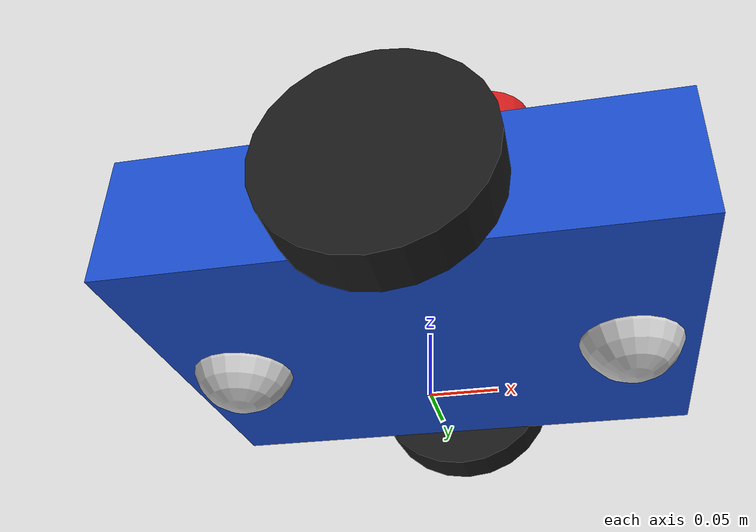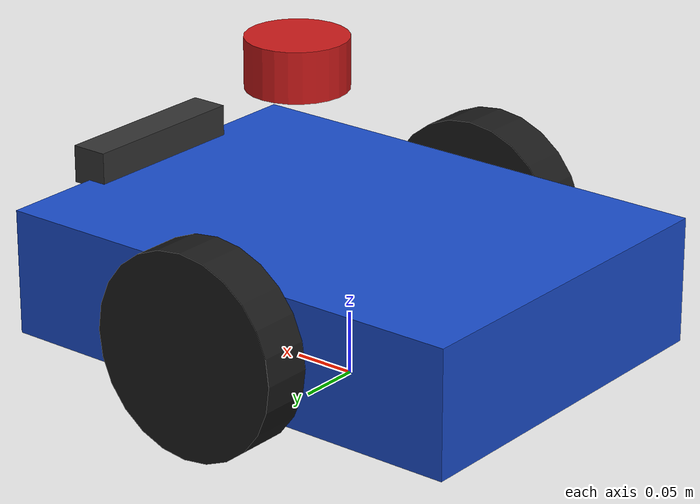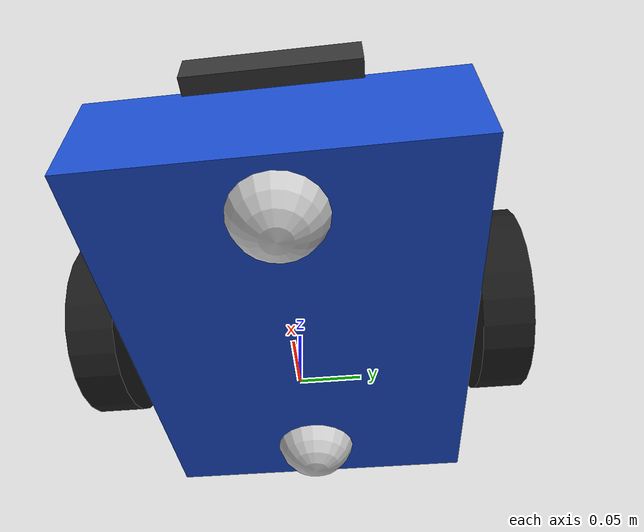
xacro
<?xml version="1.0"?>
<robot name="rover_one" xmlns:xacro="http://www.ros.org/wiki/xacro">

  <link name="base_footprint"/>

  <gazebo reference="base_footprint">
    <selfCollide>false</selfCollide>
  </gazebo>

  <joint name="base_joint" type="fixed">
    <parent link="base_footprint"/>
    <child link="base_link"/>
    <origin xyz="0 0 0.08" rpy="0 0 0"/>
  </joint>

  <link name="base_link">
    <visual>
      <geometry><box size="0.4 0.3 0.10"/></geometry>
      <material name="blue"><color rgba="0.1 0.3 0.8 1.0"/></material>
    </visual>
    <collision>
      <geometry><box size="0.38 0.28 0.08"/></geometry>
    </collision>
    <inertial>
      <mass value="5.0"/>
      <inertia ixx="0.04" ixy="0" ixz="0" iyy="0.07" iyz="0" izz="0.09"/>
    </inertial>
  </link>

  <gazebo reference="base_link">
    <material>Gazebo/Blue</material>
  </gazebo>

  <!-- Left Drive Wheel -->
  <link name="left_wheel">
    <visual>
      <geometry><cylinder radius="0.08" length="0.04"/></geometry>
      <material name="black"><color rgba="0.1 0.1 0.1 1.0"/></material>
    </visual>
    <collision>
      <geometry><cylinder radius="0.08" length="0.04"/></geometry>
    </collision>
    <inertial>
      <mass value="0.4"/>
      <inertia ixx="0.0007" ixy="0" ixz="0" iyy="0.0007" iyz="0" izz="0.0013"/>
    </inertial>
  </link>
  <joint name="left_wheel_joint" type="continuous">
    <parent link="base_link"/>
    <child link="left_wheel"/>
    <origin xyz="0 0.17 0.0" rpy="-1.5708 0 0"/>
    <axis xyz="0 0 1"/>
  </joint>

  <gazebo reference="left_wheel">
    <material>Gazebo/Black</material>
  </gazebo>

  <!-- Right Drive Wheel -->
  <link name="right_wheel">
    <visual>
      <geometry><cylinder radius="0.08" length="0.04"/></geometry>
      <material name="black"><color rgba="0.1 0.1 0.1 1.0"/></material>
    </visual>
    <collision>
      <geometry><cylinder radius="0.08" length="0.04"/></geometry>
    </collision>
    <inertial>
      <mass value="0.4"/>
      <inertia ixx="0.0007" ixy="0" ixz="0" iyy="0.0007" iyz="0" izz="0.0013"/>
    </inertial>
  </link>
  <joint name="right_wheel_joint" type="continuous">
    <parent link="base_link"/>
    <child link="right_wheel"/>
    <origin xyz="0 -0.17 0.0" rpy="-1.5708 0 0"/>
    <axis xyz="0 0 1"/>
  </joint>

  <gazebo reference="right_wheel">
    <material>Gazebo/Black</material>
  </gazebo>

  <!-- 1. Front Caster Wheel -->
  <link name="front_caster">
    <visual>
      <geometry><sphere radius="0.04"/></geometry>
      <material name="white"><color rgba="0.8 0.8 0.8 1.0"/></material>
    </visual>
    <collision>
      <geometry><sphere radius="0.04"/></geometry>
    </collision>
    <inertial>
      <mass value="0.1"/>
      <inertia ixx="0.00006" ixy="0" ixz="0" iyy="0.00006" iyz="0" izz="0.00006"/>
    </inertial>
  </link>
  <joint name="front_caster_joint" type="fixed">
    <parent link="base_link"/>
    <child link="front_caster"/>
    <origin xyz="0.15 0 -0.04" rpy="0 0 0"/>
  </joint>
  <gazebo reference="front_caster">
    <mu1>0.001</mu1>
    <mu2>0.001</mu2>
    <material>Gazebo/White</material>
  </gazebo>

  <!-- 2. Rear Caster Wheel (Eliminates the rocking effect) -->
  <link name="rear_caster">
    <visual>
      <geometry><sphere radius="0.04"/></geometry>
      <material name="white"><color rgba="0.8 0.8 0.8 1.0"/></material>
    </visual>
    <collision>
      <geometry><sphere radius="0.04"/></geometry>
    </collision>
    <inertial>
      <mass value="0.1"/>
      <inertia ixx="0.00006" ixy="0" ixz="0" iyy="0.00006" iyz="0" izz="0.00006"/>
    </inertial>
  </link>
  <joint name="rear_caster_joint" type="fixed">
    <parent link="base_link"/>
    <child link="rear_caster"/>
    <origin xyz="-0.15 0 -0.04" rpy="0 0 0"/>
  </joint>
  <gazebo reference="rear_caster">
    <mu1>0.001</mu1>
    <mu2>0.001</mu2>
    <material>Gazebo/White</material>
  </gazebo>

  <!-- 2D LIDAR -->
  <link name="lidar_link">
    <visual>
      <geometry><cylinder radius="0.04" length="0.04"/></geometry>
      <material name="red"><color rgba="0.8 0.1 0.1 1.0"/></material>
    </visual>
  </link>
  <joint name="lidar_joint" type="fixed">
    <parent link="base_link"/>
    <child link="lidar_link"/>
    <origin xyz="0.05 0 0.16" rpy="0 0 0"/>
  </joint>

  <gazebo reference="lidar_link">
    <material>Gazebo/Red</material>
  </gazebo>

  <gazebo reference="lidar_link">
    <sensor name="lidar" type="ray">
      <always_on>true</always_on>
      <update_rate>10</update_rate>
      <visualize>true</visualize>
      <ray>
        <scan>
          <horizontal>
            <samples>360</samples>
            <resolution>1</resolution>
            <min_angle>-3.14159</min_angle>
            <max_angle>3.14159</max_angle>
          </horizontal>
        </scan>
        <range><min>0.22</min><max>12.0</max></range>
      </ray>
      <plugin name="lidar_plugin" filename="libgazebo_ros_ray_sensor.so">
        <ros><remapping>~/out:=scan</remapping></ros>
        <output_type>sensor_msgs/LaserScan</output_type>
        <frame_name>lidar_link</frame_name>
      </plugin>
    </sensor>
  </gazebo>

  <!-- DEPTH CAMERA -->
  <link name="camera_link">
    <visual>
      <geometry><box size="0.03 0.14 0.03"/></geometry>
      <material name="dark"><color rgba="0.2 0.2 0.2 1.0"/></material>
    </visual>
  </link>
  <joint name="camera_joint" type="fixed">
    <parent link="base_link"/>
    <child link="camera_link"/>
    <origin xyz="0.2 0 0.06" rpy="0 0 0"/>
  </joint>

  <link name="camera_depth_optical_frame"/>
  <joint name="camera_optical_joint" type="fixed">
    <parent link="camera_link"/>
    <child link="camera_depth_optical_frame"/>
    <origin xyz="0 0 0" rpy="-1.5708 0 -1.5708"/>
  </joint>

  <gazebo reference="camera_link">
    <material>Gazebo/DarkGrey</material>
  </gazebo>

  <gazebo reference="camera_link">
    <sensor name="astra_camera" type="depth">
      <always_on>true</always_on>
      <update_rate>15.0</update_rate>
      <camera>
        <horizontal_fov>1.047198</horizontal_fov>
        <image><width>640</width><height>480</height><format>R8G8B8</format></image>
        <clip><near>0.3</near><far>6.0</far></clip>
      </camera>
      <plugin name="camera_plugin" filename="libgazebo_ros_camera.so">
        <ros>
          <remapping>custom_camera/image_raw:=camera/color/image_raw</remapping>
          <remapping>custom_camera/image_depth:=camera/depth/image_raw</remapping>
          <remapping>custom_camera/points:=camera/depth/points</remapping>
        </ros>
        <camera_name>camera</camera_name>
        <frame_name>camera_depth_optical_frame</frame_name>
        <min_depth>0.3</min_depth>
        <max_depth>6.0</max_depth>
      </plugin>
    </sensor>
  </gazebo>

  <!-- GPS SENSOR -->
  <link name="gps_link"/>
  <joint name="gps_joint" type="fixed">
    <parent link="base_link"/>
    <child link="gps_link"/>
    <origin xyz="0 0 0.14" rpy="0 0 0"/>
  </joint>

  <gazebo reference="gps_link">
    <sensor name="rover_gps" type="gps">
      <always_on>true</always_on>
      <update_rate>5.0</update_rate>
      <plugin name="gps_plugin" filename="libgazebo_ros_gps_sensor.so">
        <ros><remapping>~/out:=gps/fix</remapping></ros>
        <frame_name>gps_link</frame_name>
      </plugin>
    </sensor>
  </gazebo>

  <!-- Differential Drive Controller -->
  <gazebo>
    <plugin name="diff_drive" filename="libgazebo_ros_diff_drive.so">
      <ros>
        <remapping>cmd_vel:=cmd_vel</remapping>
        <remapping>odom:=odom</remapping>
      </ros>
      <update_rate>50</update_rate>
      <left_joint>left_wheel_joint</left_joint>
      <right_joint>right_wheel_joint</right_joint>
      <wheel_separation>0.34</wheel_separation>
      <wheel_diameter>0.16</wheel_diameter>
      <max_wheel_torque>10</max_wheel_torque>
      <publish_odom>true</publish_odom>
      <publish_odom_tf>true</publish_odom_tf>
      <publish_wheel_tf>true</publish_wheel_tf>
      <odometry_frame>odom</odometry_frame>
      <robot_base_frame>base_footprint</robot_base_frame>
    </plugin>
  </gazebo>

</robot>
